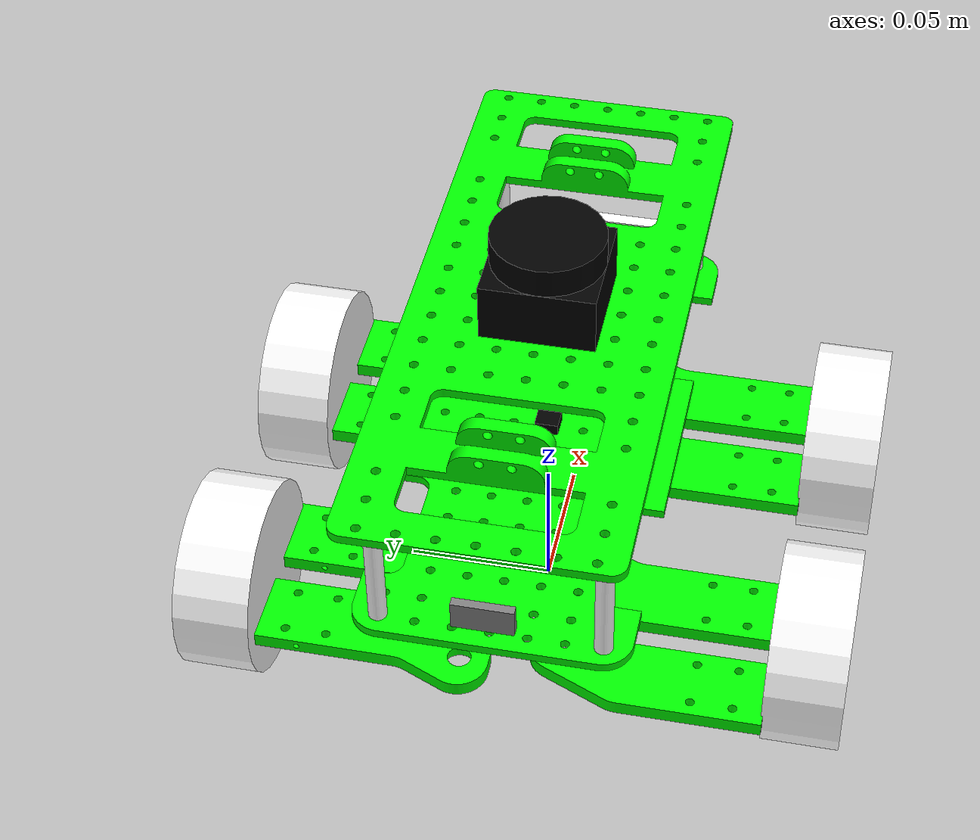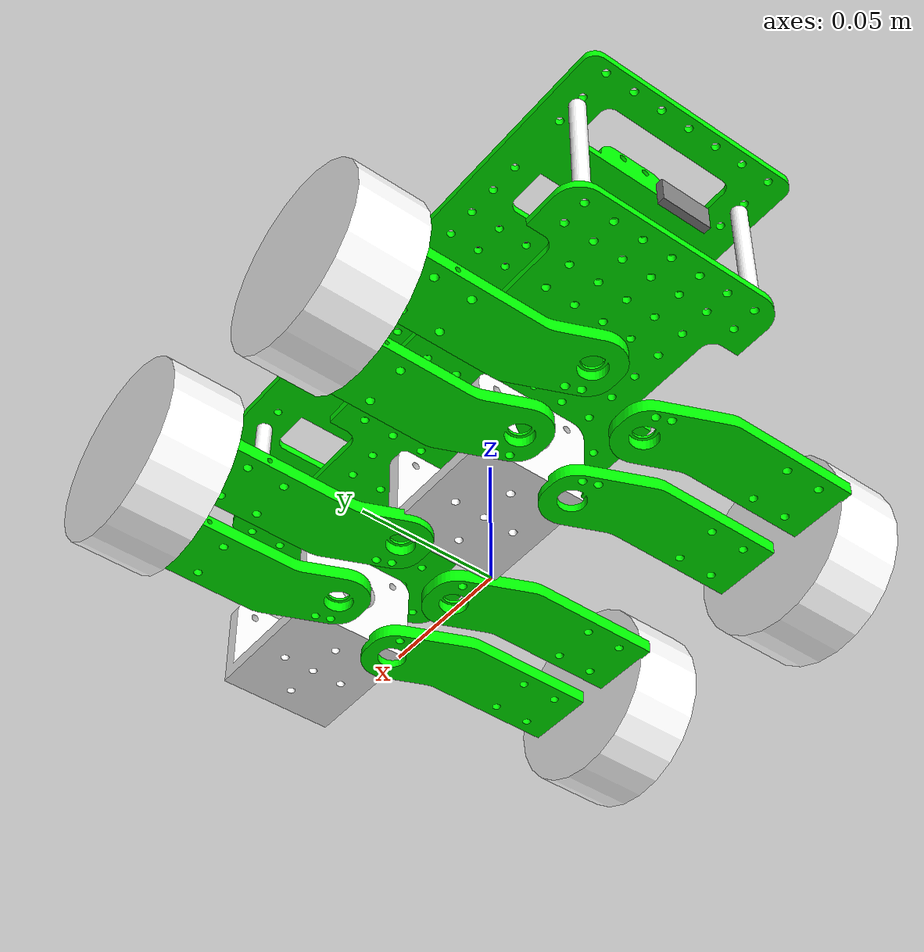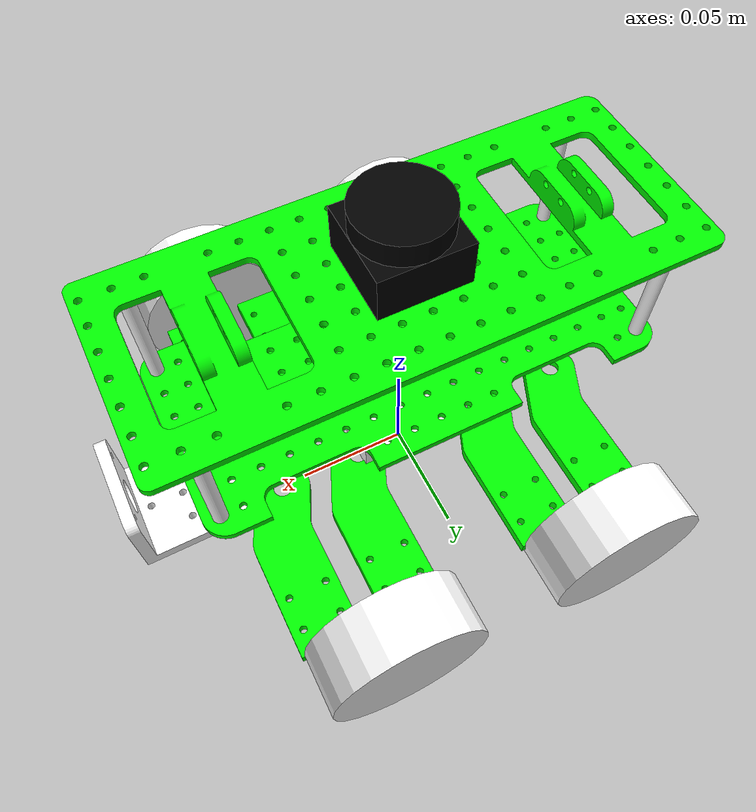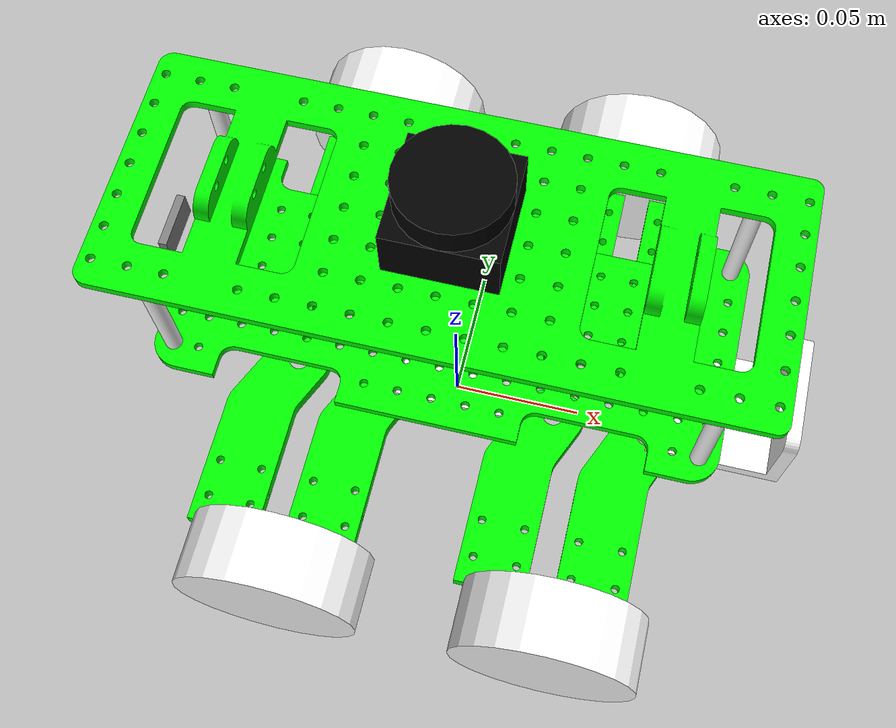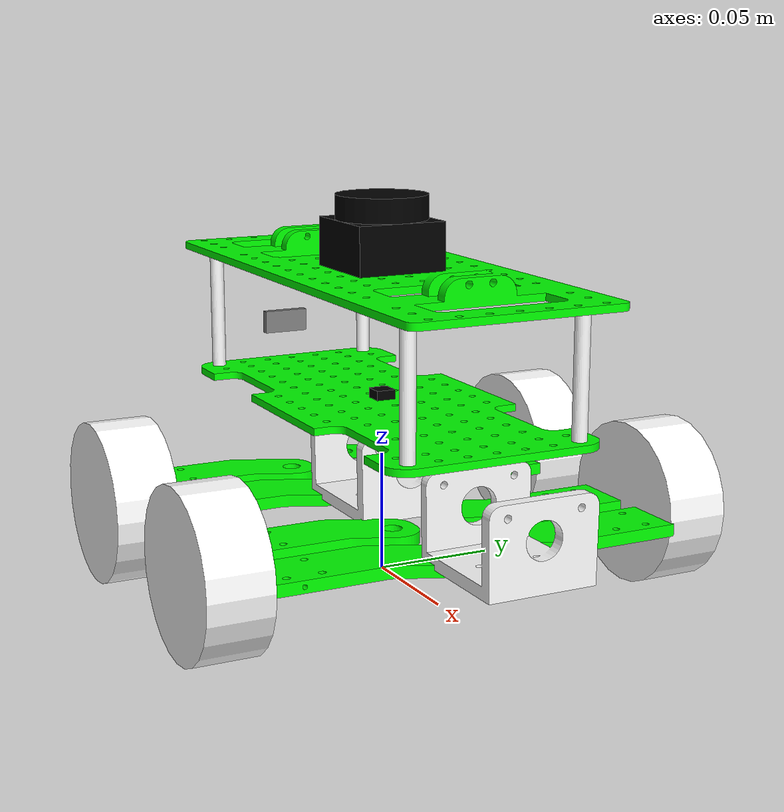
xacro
<?xml version="1.0"?>
<robot name="my_robot" xmlns:xacro="http://www.ros.org/wiki/xacro">

    <xacro:include filename="common_properties.xacro"/>
    <xacro:include filename="mobile_base.xacro"/>
    <xacro:include filename="mobile_base_gazebo.xacro"/>
    <xacro:include filename="camera.xacro"/>
    <xacro:include filename="lidar.xacro"/>
    <xacro:include filename="imu.xacro"/>

</robot>

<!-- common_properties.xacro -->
<robot xmlns:xacro="http://www.ros.org/wiki/xacro">

    <material name="green">
        <color rgba="0.0 1.0 0.0 1.0"/>
    </material>

    <material name="gray">
        <color rgba="0.5 0.5 0.5 1.0"/>
    </material>

    <material name="black">
        <color rgba="0 0 0 1.0"/>
    </material>

    <material name="white">
        <color rgba="1 1 1 1.0"/>
    </material>

    <!-- //////////////////////////////////// Multi link Macro Functions /////////////////////////////////// -->

    <xacro:macro name="arm_connect_link" params="prefix">
        <link name="${prefix}_arm_connect_link">
            <visual>
                <geometry>
                    <mesh filename="file://$(find wayfarer_description)/meshes/wayfarer/arm_connect_link.stl" scale="${scale} ${scale} ${scale}"/>
                </geometry>
                <origin xyz="0 0 0" rpy="0 0 0"/>
                <material name="white"/>
            </visual>

            <collision>
                <geometry>
                    <mesh filename="file://$(find wayfarer_description)/meshes/wayfarer/arm_connect_link.stl" scale="${scale} ${scale} ${scale}"/>
                </geometry>
                <origin xyz="0 0 0" rpy="0 0 0" />
            </collision>

            <xacro:box_inertia m="0.5" x="${arm_connect_length }" y="${arm_connect_width}" z="${arm_connect_height}"
                                o_xyz="0 ${-arm_connect_width/2 } ${-base_height}" o_rpy="0 0 ${pi/2}"/>
        </link>
    </xacro:macro>

    <xacro:macro name="wheel_joint_link" params="prefix">
        <link name="${prefix}_wheel_joint_link">
            <visual>
                <geometry>
                    <mesh filename="file://$(find wayfarer_description)/meshes/wayfarer/wheel_joint_link.stl" scale="${scale} ${scale} ${scale}"/>
                </geometry>
                <origin xyz="0 0 0" rpy="0 0 0"/>
                <material name="green"/>
            </visual>

            <collision>
                <geometry>
                    <mesh filename="file://$(find wayfarer_description)/meshes/wayfarer/wheel_joint_link.stl" scale="${scale} ${scale} ${scale}"/>
                </geometry>
                <origin xyz="0 0 0" rpy="0 0 0" />
            </collision>

            <xacro:box_inertia m="0.25" x="${wheel_joint_length }" y="${wheel_joint_width}" z="${wheel_joint_height}"
                                o_xyz="0 0 ${wheel_joint_height/2}" o_rpy="0 0 ${pi/2}"/>
        </link>
    </xacro:macro>

    <xacro:macro name="o_wheel_joint_link" params="prefix">
        <link name="${prefix}_o_wheel_joint_link">
            <visual>
                <geometry>
                    <mesh filename="file://$(find wayfarer_description)/meshes/wayfarer/wheel_joint_link.stl" scale="${scale} ${scale} ${scale}"/>
                </geometry>
                <origin xyz="0 0 0" rpy="0 0 0"/>
                <material name="white"/>
            </visual>

            <collision>
                <geometry>
                    <mesh filename="file://$(find wayfarer_description)/meshes/wayfarer/wheel_joint_link.stl" scale="${scale} ${scale} ${scale}"/>
                </geometry>
                <origin xyz="0 0 0" rpy="0 0 0" />
            </collision>

            <xacro:box_inertia m="0.5" x="${o_wheel_joint_length }" y="${o_wheel_joint_width}" z="${o_wheel_joint_height}"
                                o_xyz="0 0 ${o_wheel_joint_height/2}" o_rpy="0 ${-pi} ${pi/2}"/>
        </link>
    </xacro:macro>

    <!-- Wheel Link-->
    <xacro:macro name="wheel_link" params="prefix">
        <link name="${prefix}_wheel_link">
            <visual>
                <geometry>
                    <cylinder radius="${wheel_radius}" length="${wheel_length}"/>
                </geometry>
                <origin xyz="0 0 0" rpy="${pi/2.0} 0 0"/>
                <material name="white"/>
            </visual>

            <collision>
                <geometry>
                    <sphere radius="${wheel_radius}"/>
                </geometry>
                <origin xyz="0.0 0.0 0.0" rpy="0.0 0.0 0.0"/>
            </collision>

            <xacro:cylinder_inertia m="1.0" r="${wheel_radius}" l="${wheel_length}"
                                    o_xyz="0 0 0" o_rpy="${pi/2.0} 0 0"/>
        </link>
    </xacro:macro>

    <xacro:macro name="spacer" params="prefix">
        <link name="${prefix}_spacer">
            <visual>
                <geometry>
                    <mesh filename="file://$(find wayfarer_description)/meshes/wayfarer/spacer.stl" scale="${scale} ${scale} ${scale}"/>
                </geometry>
                <origin xyz="0 0 0" rpy="${pi/2.0} 0 0"/>
                <material name="white"/>
            </visual>

            <collision>
                <geometry>
                    <mesh filename="file://$(find wayfarer_description)/meshes/wayfarer/spacer.stl" scale="${scale} ${scale} ${scale}"/>
                </geometry>
                <origin xyz="0.0 0.0 0.0" rpy="${pi/2.0} 0.0 0.0"/>
            </collision>

            <xacro:cylinder_inertia m="0.05" r="${spacer_radius}" l="${spacer_height}"
            o_xyz="0 0 0" o_rpy="${pi/2.0} 0 0"/>
</link>
</xacro:macro>

    <!-- ///////////////////////////////////// Inertia Macro fucntions ///////////////////////////////////// -->

    <xacro:macro name="box_inertia" params="m x y z o_xyz o_rpy">
        <inertial>
            <mass value="${m}"/>
            <origin xyz="${o_xyz}" rpy="${o_rpy}"/>
            <inertia ixx="${(m/12.0) * (y**2 + z**2)}" ixy="0" ixz="0"
                     iyy="${(m/12.0) * (x**2 + z**2)}" iyz="0"
                     izz="${(m/12.0) * (x**2 + y**2)}"/>
        </inertial>
    </xacro:macro>

    <xacro:macro name="cylinder_inertia" params="m r l o_xyz o_rpy">
        <inertial>
            <mass value="${m}"/>
            <origin xyz="${o_xyz}" rpy="${o_rpy}"/>
            <inertia ixx="${(m/12.0) *(3 * r**2 + l**2)}" ixy="0.0" ixz="0.0"
                     iyy="${(m / 12.0) *(3 * r**2 + l**2)}" iyz="0.0"
                     izz="${(m/2) * r**2}"/>
        </inertial>
    </xacro:macro>

    <xacro:macro name="sphere_inertia" params="m r o_xyz o_rpy">
        <inertial>
            <mass value="${m}"/>
            <origin xyz="${o_xyz}" rpy="${o_rpy}"/>
            <inertia ixx="${0.4 * m * r**2}" ixy="0.0" ixz="0.0"
                     iyy="${0.4 * m * r**2}" iyz="0.0"
                     izz="${0.4 * m * r**2}"/>
        </inertial>
    </xacro:macro>
</robot>

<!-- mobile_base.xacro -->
<robot xmlns:xacro="http://www.ros.org/wiki/xacro">

    <xacro:property name="scale" value="0.001"/>
    <xacro:property name="scalex" value="10"/>

    <xacro:property name="base_length" value="${2.0 / scalex}"/>
    <xacro:property name="base_width" value="${0.90 / scalex}"/>
    <xacro:property name="base_height" value="${0.03 / scalex}"/>

    <xacro:property name="wheel_radius" value="${0.335 / scalex}"/>
    <xacro:property name="wheel_length" value="${0.26 / scalex}"/>

    <xacro:property name="arm_connect_width" value="${0.448 / scalex}"/>
    <xacro:property name="arm_connect_length" value="${0.55 / scalex }"/>
    <xacro:property name="arm_connect_height" value="${0.35 / scalex}"/>

    <xacro:property name="wheel_joint_width" value="${0.8 / scalex}"/>
    <xacro:property name="wheel_joint_length" value="${0.3374 / scalex}"/>
    <xacro:property name="wheel_joint_height" value="${0.05 / scalex}"/>

    <xacro:property name="o_wheel_joint_width" value="${0.8 / scalex}"/>
    <xacro:property name="o_wheel_joint_length" value="${0.42 / scalex}"/>
    <xacro:property name="o_wheel_joint_height" value="${0.43 / scalex}"/>

    <xacro:property name="spacer_radius" value="${0.03 / scalex}"/>
    <xacro:property name="spacer_height" value="${0.50 / scalex}"/>

    <link name="base_footprint"/>

    <link name="base_link">
        <visual>
            <geometry>
                <mesh filename="file://$(find wayfarer_description)/meshes/wayfarer/base_link.stl" scale="${scale} ${scale} ${scale}"/>
            </geometry>
            <origin xyz="0 0 ${base_height/2.0}" rpy="0 0 0"/>
            <material name="green"/>
        </visual>

        <collision>
            <geometry>
                <mesh filename="package://wayfarer_description/meshes/wayfarer/base_link.stl" scale="${scale} ${scale} ${scale}"/>
            </geometry>
            <origin xyz="0 0 ${base_height/2.0}" rpy="0 0 0" />
        </collision>

        <xacro:box_inertia m="1.0" x="${base_length}" y="${base_width}" z="${base_height}"
                            o_xyz="0 0 ${base_height}" o_rpy="0 0 ${pi/2}"/>
    </link>

    <link name="top_chassis_link">
        <visual>
            <geometry>
                <mesh filename="file://$(find wayfarer_description)/meshes/wayfarer/top_chassis.stl" scale="${scale} ${scale} ${scale}"/>
            </geometry>
            <origin xyz="0 0 0" rpy="0 0 0"/>
            <material name="green"/>
        </visual>

        <collision>
            <geometry>
                <mesh filename="package://wayfarer_description/meshes/wayfarer/top_chassis.stl" scale="${scale} ${scale} ${scale}"/>
            </geometry>
            <origin xyz="0 0 ${base_height/2.0}" rpy="0 0 0" />
        </collision>

        <xacro:box_inertia m="1.0" x="${base_length}" y="${base_width}" z="${base_height}"
                            o_xyz="0 0 ${base_height}" o_rpy="0 0 ${pi/2}"/>
    </link>

    <xacro:arm_connect_link prefix="front"/>
    <xacro:arm_connect_link prefix="back"/>

    <xacro:wheel_joint_link prefix="front_right"/>
    <xacro:wheel_joint_link prefix="o_front_right"/>

    <xacro:wheel_joint_link prefix="front_left"/>
    <xacro:wheel_joint_link prefix="o_front_left"/>

    <xacro:wheel_joint_link prefix="back_right"/>
    <xacro:wheel_joint_link prefix="o_back_right"/>

    <xacro:wheel_joint_link prefix="back_left"/>
    <xacro:wheel_joint_link prefix="o_back_left"/>

    <xacro:wheel_link prefix="front_r"/>
    <xacro:wheel_link prefix="front_l"/>
    <xacro:wheel_link prefix="back_r"/>
    <xacro:wheel_link prefix="back_l"/>

    <xacro:spacer prefix="fr"/>
    <xacro:spacer prefix="fl"/>
    <xacro:spacer prefix="br"/>
    <xacro:spacer prefix="bl"/>

    <joint name="base_joint" type="fixed">
        <parent link="base_footprint"/>
        <child link="base_link"/>
        <origin xyz="0 0 ${arm_connect_height + (wheel_joint_length/2) + (wheel_radius / 2)}" rpy="0 0 ${pi/2}"/>
    </joint>

    <joint name="top_chassis" type="fixed">
        <parent link="base_link"/>
        <child link="top_chassis_link"/>
        <origin xyz="0 0 ${spacer_height + (base_height*2)}" rpy="${pi} 0 0"/>
    </joint>

    <!-- Base link to arm connect links -->
    <joint name="base_front_arm_connect_joint" type="fixed">
        <parent link="base_link"/>
        <child link="front_arm_connect_link"/>
        <origin xyz="0 ${base_length/4 - (arm_connect_length/2)} ${-arm_connect_height/2.0 - (base_height/2)}" rpy="${pi} 0 0"/>
    </joint>

    <joint name="base_back_arm_connect_joint" type="fixed">
        <parent link="base_link"/>
        <child link="back_arm_connect_link"/>
        <origin xyz="0 ${-base_length/4 - (arm_connect_length/2)} ${-arm_connect_height/2.0 - (base_height/2)}" rpy="${pi} 0 0"/>
    </joint>

    <!-- Wheel joints links -->
    <joint name="arm_connect_front_right_wheel_joint" type="fixed">
        <parent link="front_arm_connect_link"/>
        <child link="front_right_wheel_joint_link"/>
        <origin xyz="${-0.51 / scalex} ${-0.09/ scalex} ${0.18/ scalex}" rpy="${-pi/2} 0 0.0"/>
    </joint>

    <joint name="arm_connect_front_left_wheel_joint" type="fixed">
        <parent link="front_arm_connect_link"/>
        <child link="front_left_wheel_joint_link"/>
        <origin xyz="${0.51/ scalex} ${-0.04/ scalex} ${0.18/ scalex}" rpy="${pi/2} ${pi} 0.0"/>
    </joint>

    <joint name="arm_connect_back_right_wheel_joint" type="fixed">
        <parent link="back_arm_connect_link"/>
        <child link="back_right_wheel_joint_link"/>
        <origin xyz="${-0.51 / scalex} -${0.09 / scalex} ${0.18 / scalex}" rpy="${-pi/2} 0 0.0"/>
    </joint>

    <joint name="arm_connect_back_left_wheel_joint" type="fixed">
        <parent link="back_arm_connect_link"/>
        <child link="back_left_wheel_joint_link"/>
        <origin xyz="${0.51 / scalex} ${-0.04 / scalex} ${0.18 / scalex}" rpy="${pi/2} ${pi} 0.0"/>
    </joint>

    <joint name="arm_connect_o_front_right_wheel_joint" type="fixed">
        <parent link="front_arm_connect_link"/>
        <child link="o_front_right_wheel_joint_link"/>
        <origin xyz="${-0.51 / scalex} ${-0.45 / scalex} ${0.18 / scalex}" rpy="${pi/2} ${pi} ${pi}"/>
    </joint>

    <joint name="arm_connect_o_back_right_wheel_joint" type="fixed">
        <parent link="back_arm_connect_link"/>
        <child link="o_back_right_wheel_joint_link"/>
        <origin xyz="${-0.51 / scalex} ${-0.45 / scalex} ${0.18 / scalex}" rpy="${pi/2} ${pi} ${pi}"/>
    </joint>

    <joint name="arm_connect_o_front_left_wheel_joint" type="fixed">
        <parent link="front_arm_connect_link"/>
        <child link="o_front_left_wheel_joint_link"/>
        <origin xyz="${0.51 / scalex} ${-0.40 / scalex} ${0.18 / scalex}" rpy="${pi/2} ${pi} 0"/>
    </joint>

    <joint name="arm_connect_o_back_left_wheel_joint" type="fixed">
        <parent link="back_arm_connect_link"/>
        <child link="o_back_left_wheel_joint_link"/>
        <origin xyz="${0.51 / scalex} ${-0.40 / scalex} ${0.18 / scalex}" rpy="${pi/2} ${pi} 0"/>
    </joint>

    <!-- Wheels -->
    <joint name="front_r_arm_wheel_joint" type="continuous">
        <parent link="front_left_wheel_joint_link"/>
        <child link="front_r_wheel_link"/>
        <origin xyz="${-wheel_joint_width/2 + (-wheel_length/3.5)} 0.0 ${wheel_radius /2 + (0.05 / scalex)}" rpy="0 0 ${pi/2} "/>
        <axis xyz="0.0 -1.0 0.0"/>
    </joint>

    <joint name="front_l_arm_wheel_joint" type="continuous">
        <parent link="front_right_wheel_joint_link"/>
        <child link="front_l_wheel_link"/>
        <origin xyz="${-wheel_joint_width/2 + (-wheel_length/3.5)} 0.0 ${-wheel_radius /2 + (0.05 / scalex)}" rpy="0 0 ${pi/2} "/>
        <axis xyz="0.0 1.0 0.0"/>
    </joint>

    <joint name="back_r_arm_wheel_joint" type="continuous">
        <parent link="back_left_wheel_joint_link"/>
        <child link="back_r_wheel_link"/>
        <origin xyz="${-wheel_joint_width/2 + (-wheel_length/3.5)} 0.0 ${wheel_radius /2 + (0.05 /scalex)}" rpy="0 0 ${pi/2} "/>
        <axis xyz="0.0 -1.0 0.0"/>
    </joint>

    <joint name="back_l_arm_wheel_joint" type="continuous">
        <parent link="back_right_wheel_joint_link"/>
        <child link="back_l_wheel_link"/>
        <origin xyz="${-wheel_joint_width/2 + (-wheel_length/3.5)} 0.0 ${-wheel_radius /2 + (0.05 / scalex)}" rpy="0 0 ${pi/2} "/>
        <axis xyz="0.0 1.0 0.0"/>
    </joint>

    <!-- Spacers -->
    <joint name="fr_spacer_joint" type="fixed">
        <parent link="base_link"/>
        <child link="fr_spacer"/>
        <origin xyz="${base_width/2.5} ${base_length / 2.15} ${(wheel_radius/2)+(wheel_joint_height/2)+(arm_connect_height)} " rpy="${pi/2} 0 0"/>
    </joint>

    <joint name="fl_spacer_joint" type="fixed">
        <parent link="base_link"/>
        <child link="fl_spacer"/>
        <origin xyz="${-base_width/2.5} ${base_length / 2.15} ${(wheel_radius/2)+(wheel_joint_height/2)+(arm_connect_height)} " rpy="${pi/2} 0 0"/>
    </joint>

    <joint name="br_spacer_joint" type="fixed">
        <parent link="base_link"/>
        <child link="br_spacer"/>
        <origin xyz="${base_width/2.5} ${-base_length / 2.15} ${(wheel_radius/2)+(wheel_joint_height/2)+(arm_connect_height)} " rpy="${pi/2} 0 0"/>
    </joint>

    <joint name="bl_spacer_joint" type="fixed">
        <parent link="base_link"/>
        <child link="bl_spacer"/>
        <origin xyz="${-base_width/2.5} ${-base_length / 2.15} ${(wheel_radius/2)+(wheel_joint_height/2)+(arm_connect_height)} " rpy="${pi/2} 0 0"/>
    </joint>

</robot>

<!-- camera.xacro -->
<robot xmlns:xacro="http://www.ros.org/wiki/xacro">

    <xacro:property name="camera_length" value="0.003"/>
    <xacro:property name="camera_width" value="0.02"/>
    <xacro:property name="camera_height" value="0.01"/>

    <link name="camera_link">
        <visual>
            <geometry>
                <box size="${camera_length} ${camera_width} ${camera_height}"/>
            </geometry>
            <material name="gray"/>
        </visual>
        <collision>
            <geometry>
                <box size="${camera_length} ${camera_width} ${camera_height}"/>
            </geometry>
        </collision>
        <!-- Inertia-->
         <xacro:box_inertia m="0.1" x="${camera_length}" y="${camera_width}" z="${camera_height}"
            o_xyz="0 0 0" o_rpy="0 0 0"/>
    </link>

    <joint name="base_camera_joint" type="fixed">
        <parent link="base_link"/>
        <child link="camera_link"/>
        <origin xyz="0 ${(base_length + camera_length) /2.0}  ${base_height+(arm_connect_height/2)}" rpy=" 0 0 ${pi/2}"/>
    </joint>

    <link name="camera_link_optical"/>

    <joint name="camera_optical_joint" type="fixed">
        <origin xyz="0 0 0" rpy="${-pi/2} 0 ${-pi/2}"/>
        <parent link="camera_link"/>
        <child link="camera_link_optical"/>
      </joint>

    <gazebo reference="camera_link">
        <sensor name="camera" type="camera">
            <camera>
                <horizontal_fov>1.3962634</horizontal_fov>
                <image>
                    <width>640</width>
                    <height>480</height>
                    <format>R8G8B8</format>
                </image>
                <clip>
                    <near>0.1</near>
                    <far>15</far>
                </clip>
                <noise>
                    <type>gaussian</type>
                    <mean>0.0</mean>
                    <stddev>0.007</stddev>
                </noise>
                <optical_frame_id>camera_link_optical</optical_frame_id>
                <camera_info_topic>camera/camera_info</camera_info_topic>
            </camera>
            <always_on>1</always_on>
            <update_rate>20</update_rate>
            <visualize>true</visualize>
            <topic>camera/image_raw</topic>
        </sensor>
    </gazebo>
</robot>

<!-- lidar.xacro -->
<robot xmlns:xacro="http://www.ros.org/wiki/xacro">

    <xacro:property name="lidar_length" value="0.038"/>
    <xacro:property name="lidar_width" value="0.038"/>
    <xacro:property name="lidar_height" value="0.02"/>
    <xacro:property name="lidar_top_height" value="0.013"/>

    <link name="lidar_link">
        <visual>
            <geometry>
                <box size="${lidar_length} ${lidar_width} ${lidar_height}"/>
            </geometry>
            <material name="black"/>
        </visual>
        <collision>
            <geometry>
                <box size="${lidar_length} ${lidar_width} ${lidar_height}"/>
            </geometry>
        </collision>
        <!-- Inertia-->
         <xacro:box_inertia m="0.05" x="${lidar_length}" y="${lidar_width}" z="${lidar_height}"
            o_xyz="0 0 0" o_rpy="0 0 0"/>
    </link>

    <link name="lidar_top_link">
        <visual>
            <geometry>
                <cylinder radius="${lidar_length/2}" length="${lidar_top_height}"/>
            </geometry>
            <material name="black"/>
        </visual>
        <collision>
            <geometry>
                <cylinder radius="${lidar_length/2}" length="${lidar_top_height}"/>
            </geometry>
        </collision>
        <xacro:cylinder_inertia m="0.05" r="${lidar_length/2}" l="${lidar_top_height}"
        o_xyz="0 0 0" o_rpy="0 0 0"/>
    </link>

      <!-- Scan output link for proper TF -->
      <link name="lidar_scan_link"/>

    <joint name="base_lidar_joint" type="fixed">
        <parent link="top_chassis_link"/>
        <child link="lidar_link"/>
        <origin xyz="0 0 ${-base_height+(-lidar_height/2)}" rpy=" 0 0 0"/>
    </joint>

    <joint name="lidar_top_joint" type="fixed">
        <parent link="lidar_link"/>
        <child link="lidar_top_link"/>
        <origin xyz="0 0 ${-lidar_height + (lidar_top_height/2)}" rpy="0 0 0"/>
    </joint>

    <joint name="lidar_scan_joint" type="fixed">
        <parent link="lidar_link"/>
        <child link="lidar_scan_link"/>
        <origin xyz="0 0 0" rpy="0 0 ${pi}"/>
    </joint>

    <gazebo reference="lidar_scan_link">
        <sensor name="laser" type="gpu_lidar">
            <pose> 0 0 0 0 0 0 </pose>
            <always_on>true</always_on>
            <visualize>true</visualize>
            <update_rate>10</update_rate>
            <topic>scan</topic>
            <gz_frame_id>laser_frame</gz_frame_id>
            <lidar>
               <scan>
                  <horizontal>
                  <samples>360</samples>
                  <min_angle>-3.14</min_angle>
                  <max_angle>3.14</max_angle>
                  </horizontal>
               </scan>
               <range>
                  <min>0.02</min>
                  <max>12</max>
               </range>
            </lidar>
         </sensor>
    </gazebo>

</robot>

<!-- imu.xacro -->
<robot xmlns:xacro="http://www.ros.org/wiki/xacro">

    <xacro:property name="imu_width" value="0.008"/>
    <xacro:property name="imu_height" value="0.004"/>
    <xacro:property name="imu_length" value="0.008"/>

    <link name="imu_link">
        <visual>
            <geometry>
                <box size="${imu_length} ${imu_width} ${imu_height}"/>
            </geometry>
            <material name="black"/>
        </visual>
        <collision>
            <geometry>
                <box size="${imu_length} ${imu_width} ${imu_height}"/>
            </geometry>
        </collision>
        <!-- Inertia-->
         <xacro:box_inertia m="0.05" x="${imu_length}" y="${imu_width}" z="${imu_height}"
            o_xyz="0 0 0" o_rpy="0 0 0"/>
    </link>

    <joint name="imu_base_link_joint" type="fixed">
        <parent link="base_link"/>
        <child link="imu_link"/>
        <origin xyz="0.0 0.0 ${base_height + imu_height}" rpy="0.0 0.0 0.0"/>
    </joint>

    <gazebo reference="imu_link">
      <sensor name="imu_sensor" type="imu">
        <pose>0 0 0 0 0 0</pose>
        <always_on>true</always_on>
        <update_rate>100</update_rate>
        <imu>
          <angular_velocity>
            <x><noise type="gaussian"/><!-- You can customize these if needed --></x>
            <y><noise type="gaussian"/></y>
            <z><noise type="gaussian"/></z>
          </angular_velocity>
          <linear_acceleration>
            <x><noise type="gaussian"/></x>
            <y><noise type="gaussian"/></y>
            <z><noise type="gaussian"/></z>
          </linear_acceleration>
          <orientation>
            <x><noise type="gaussian"/></x>
            <y><noise type="gaussian"/></y>
            <z><noise type="gaussian"/></z>
            <w><noise type="gaussian"/></w>
          </orientation>
        </imu>

        <plugin name="gz::sim::systems::Imu" filename="libgz-sim-imu-system.so">
          <topicName>/imu/data</topicName>
          <frameName>imu_link</frameName>
        </plugin>
      </sensor>
    </gazebo>

</robot>
